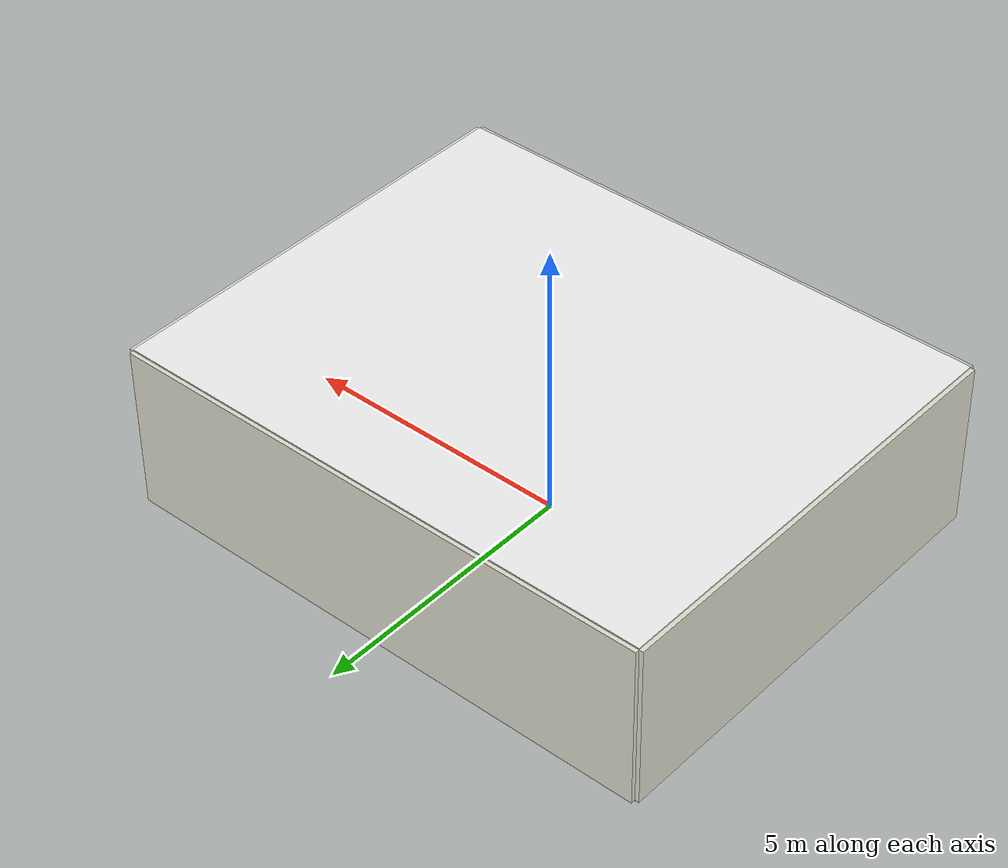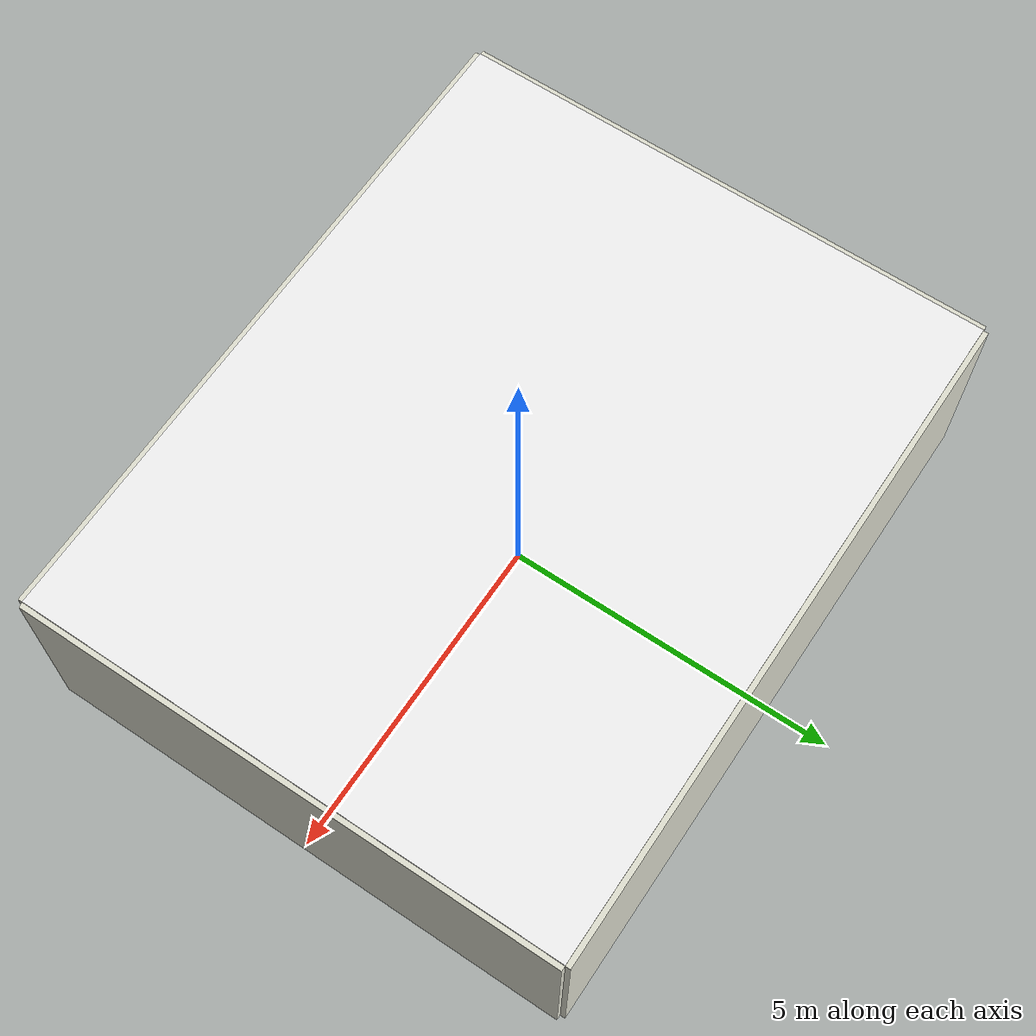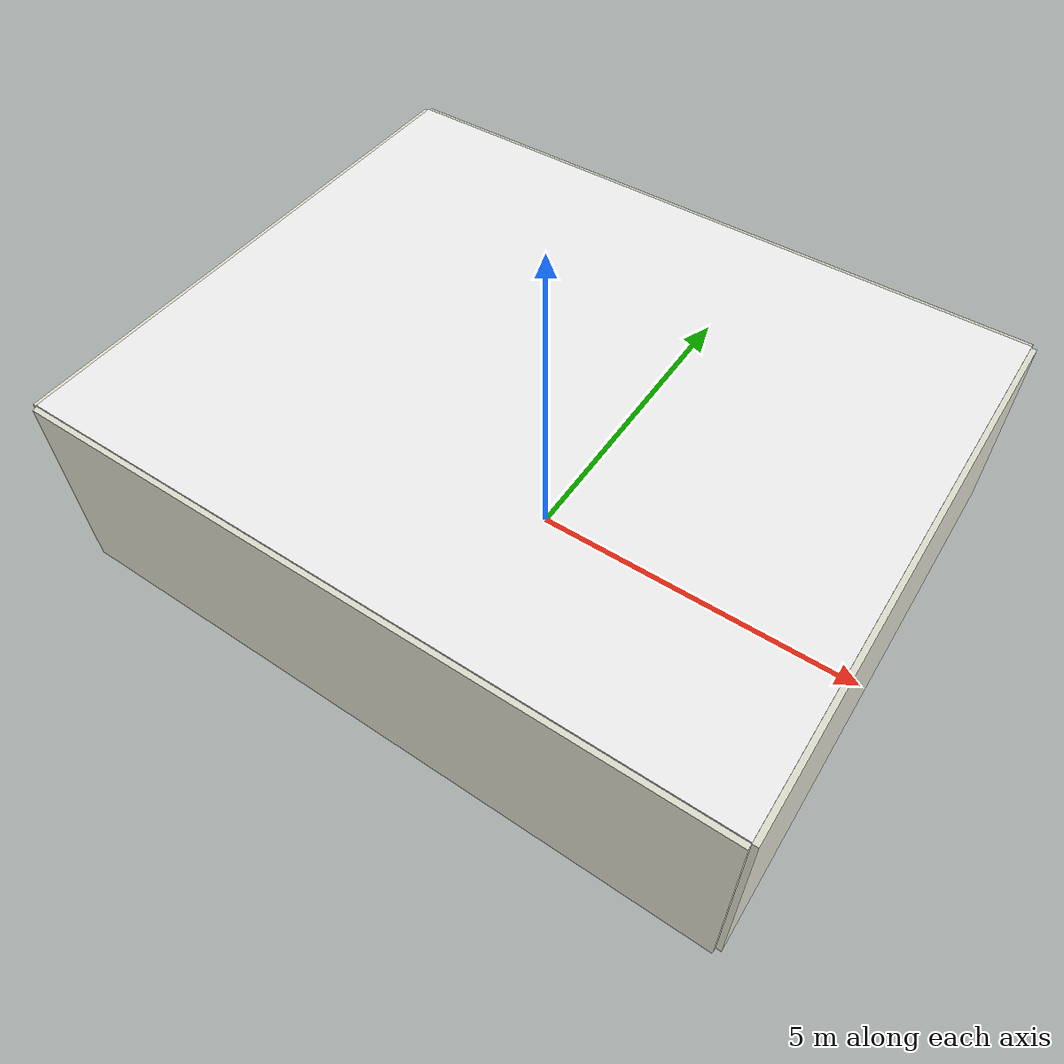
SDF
<sdf version="1.6">
 <world name="university_room">
  <physics type="ode">
   <real_time_update_rate>1000</real_time_update_rate>
   <max_step_size>0.001</max_step_size>
   <real_time_factor>1</real_time_factor>
  </physics>
  <light name="ambient_light" type="ambient"><color>0.4 0.4 0.4 1</color></light>
  <light name="sun" type="directional">
   <pose>0 0 10 0 0 0</pose>
   <diffuse>0.9 0.9 0.9 1</diffuse>
   <specular>0.3 0.3 0.3 1</specular>
   <direction>-0.3 0.3 -1</direction>
  </light>
  <light name="ceiling_light_1" type="point">
   <pose>-2 0 3 0 0 0</pose>
   <diffuse>1 1 0.95 1</diffuse>
   <specular>0.1 0.1 0.1 1</specular>
   <attenuation>
    <range>8</range>
    <constant>0.4</constant>
    <linear>0.1</linear>
    <quadratic>0.01</quadratic>
   </attenuation>
   <cast_shadows>false</cast_shadows>
  </light>
  <light name="ceiling_light_2" type="point">
   <pose>2 0 3 0 0 0</pose>
   <diffuse>1 1 0.95 1</diffuse>
   <specular>0.1 0.1 0.1 1</specular>
   <attenuation>
    <range>8</range>
    <constant>0.4</constant>
    <linear>0.1</linear>
    <quadratic>0.01</quadratic>
   </attenuation>
   <cast_shadows>false</cast_shadows>
  </light>
  <model name="floor">
   <static>true</static>
   <link name="link">
    <collision name="collision">
     <geometry><box><size>10 8 0.05</size></box></geometry>
     <surface><friction><ode><mu>1</mu><mu2>1</mu2></ode></friction></surface>
    </collision>
    <visual name="visual">
     <geometry><box><size>10 8 0.05</size></box></geometry>
     <material>
      <ambient>0.85 0.85 0.85 1</ambient>
      <diffuse>0.85 0.85 0.85 1</diffuse>
      <specular>0.1 0.1 0.1 1</specular>
     </material>
    </visual>
   </link>
  </model>
  <model name="ceiling">
   <static>true</static>
   <link name="link">
    <pose>0 0 3 0 0 0</pose>
    <collision name="collision"><geometry><box><size>10 8 0.05</size></box></geometry></collision>
    <visual name="visual">
     <geometry><box><size>10 8 0.05</size></box></geometry>
     <material><ambient>0.95 0.95 0.95 1</ambient><diffuse>0.95 0.95 0.95 1</diffuse></material>
    </visual>
   </link>
  </model>
  <model name="wall_north">
   <static>true</static>
   <link name="link">
    <pose>0 4 1.5 0 0 0</pose>
    <collision name="collision"><geometry><box><size>10 0.15 3</size></box></geometry></collision>
    <visual name="visual">
     <geometry><box><size>10 0.15 3</size></box></geometry>
     <material><ambient>0.88 0.88 0.82 1</ambient><diffuse>0.88 0.88 0.82 1</diffuse></material>
    </visual>
   </link>
  </model>
  <model name="wall_south">
   <static>true</static>
   <link name="link">
    <pose>0 -4 1.5 0 0 0</pose>
    <collision name="collision"><geometry><box><size>10 0.15 3</size></box></geometry></collision>
    <visual name="visual">
     <geometry><box><size>10 0.15 3</size></box></geometry>
     <material><ambient>0.88 0.88 0.82 1</ambient><diffuse>0.88 0.88 0.82 1</diffuse></material>
    </visual>
   </link>
  </model>
  <model name="wall_east">
   <static>true</static>
   <link name="link">
    <pose>5 0 1.5 0 0 0</pose>
    <collision name="collision"><geometry><box><size>0.15 8 3</size></box></geometry></collision>
    <visual name="visual">
     <geometry><box><size>0.15 8 3</size></box></geometry>
     <material><ambient>0.88 0.88 0.82 1</ambient><diffuse>0.88 0.88 0.82 1</diffuse></material>
    </visual>
   </link>
  </model>
  <model name="wall_west">
   <static>true</static>
   <link name="link">
    <pose>-5 0 1.5 0 0 0</pose>
    <collision name="collision"><geometry><box><size>0.15 8 3</size></box></geometry></collision>
    <visual name="visual">
     <geometry><box><size>0.15 8 3</size></box></geometry>
     <material><ambient>0.88 0.88 0.82 1</ambient><diffuse>0.88 0.88 0.82 1</diffuse></material>
    </visual>
   </link>
  </model>
  <model name="lecture_desk_top">
   <static>true</static>
   <link name="link">
    <pose>0 3 0.78 0 0 0</pose>
    <collision name="collision"><geometry><box><size>2.0 0.7 0.05</size></box></geometry></collision>
    <visual name="visual">
     <geometry><box><size>2.0 0.7 0.05</size></box></geometry>
     <material><ambient>0.45 0.28 0.10 1</ambient><diffuse>0.45 0.28 0.10 1</diffuse></material>
    </visual>
   </link>
  </model>
  <model name="desk_leg_left">
   <static>true</static>
   <link name="link">
    <pose>-0.9 3 0.39 0 0 0</pose>
    <collision name="collision"><geometry><box><size>0.05 0.05 0.78</size></box></geometry></collision>
    <visual name="visual">
     <geometry><box><size>0.05 0.05 0.78</size></box></geometry>
     <material><ambient>0.3 0.2 0.1 1</ambient><diffuse>0.3 0.2 0.1 1</diffuse></material>
    </visual>
   </link>
  </model>
  <model name="desk_leg_right">
   <static>true</static>
   <link name="link">
    <pose>0.9 3 0.39 0 0 0</pose>
    <collision name="collision"><geometry><box><size>0.05 0.05 0.78</size></box></geometry></collision>
    <visual name="visual">
     <geometry><box><size>0.05 0.05 0.78</size></box></geometry>
     <material><ambient>0.3 0.2 0.1 1</ambient><diffuse>0.3 0.2 0.1 1</diffuse></material>
    </visual>
   </link>
  </model>
  <model name="student_desk_1a_top">
   <static>true</static>
   <link name="link">
    <pose>-2.5 0.5 0.72 0 0 0</pose>
    <collision name="collision"><geometry><box><size>0.8 0.5 0.04</size></box></geometry></collision>
    <visual name="visual">
     <geometry><box><size>0.8 0.5 0.04</size></box></geometry>
     <material><ambient>0.55 0.35 0.12 1</ambient><diffuse>0.55 0.35 0.12 1</diffuse></material>
    </visual>
   </link>
  </model>
  <model name="student_desk_1b_top">
   <static>true</static>
   <link name="link">
    <pose>0 0.5 0.72 0 0 0</pose>
    <collision name="collision"><geometry><box><size>0.8 0.5 0.04</size></box></geometry></collision>
    <visual name="visual">
     <geometry><box><size>0.8 0.5 0.04</size></box></geometry>
     <material><ambient>0.55 0.35 0.12 1</ambient><diffuse>0.55 0.35 0.12 1</diffuse></material>
    </visual>
   </link>
  </model>
  <model name="student_desk_1c_top">
   <static>true</static>
   <link name="link">
    <pose>2.5 0.5 0.72 0 0 0</pose>
    <collision name="collision"><geometry><box><size>0.8 0.5 0.04</size></box></geometry></collision>
    <visual name="visual">
     <geometry><box><size>0.8 0.5 0.04</size></box></geometry>
     <material><ambient>0.55 0.35 0.12 1</ambient><diffuse>0.55 0.35 0.12 1</diffuse></material>
    </visual>
   </link>
  </model>
  <model name="student_desk_2a_top">
   <static>true</static>
   <link name="link">
    <pose>-2.5 -1.2 0.72 0 0 0</pose>
    <collision name="collision"><geometry><box><size>0.8 0.5 0.04</size></box></geometry></collision>
    <visual name="visual">
     <geometry><box><size>0.8 0.5 0.04</size></box></geometry>
     <material><ambient>0.55 0.35 0.12 1</ambient><diffuse>0.55 0.35 0.12 1</diffuse></material>
    </visual>
   </link>
  </model>
  <model name="student_desk_2b_top">
   <static>true</static>
   <link name="link">
    <pose>0 -1.2 0.72 0 0 0</pose>
    <collision name="collision"><geometry><box><size>0.8 0.5 0.04</size></box></geometry></collision>
    <visual name="visual">
     <geometry><box><size>0.8 0.5 0.04</size></box></geometry>
     <material><ambient>0.55 0.35 0.12 1</ambient><diffuse>0.55 0.35 0.12 1</diffuse></material>
    </visual>
   </link>
  </model>
  <model name="student_desk_2c_top">
   <static>true</static>
   <link name="link">
    <pose>2.5 -1.2 0.72 0 0 0</pose>
    <collision name="collision"><geometry><box><size>0.8 0.5 0.04</size></box></geometry></collision>
    <visual name="visual">
     <geometry><box><size>0.8 0.5 0.04</size></box></geometry>
     <material><ambient>0.55 0.35 0.12 1</ambient><diffuse>0.55 0.35 0.12 1</diffuse></material>
    </visual>
   </link>
  </model>
  <model name="whiteboard">
   <static>true</static>
   <link name="link">
    <pose>0 3.85 1.7 0 0 0</pose>
    <collision name="collision"><geometry><box><size>2.5 0.04 1.0</size></box></geometry></collision>
    <visual name="visual">
     <geometry><box><size>2.5 0.04 1.0</size></box></geometry>
     <material>
      <ambient>0.96 0.96 0.96 1</ambient>
      <diffuse>0.96 0.96 0.96 1</diffuse>
      <specular>0.4 0.4 0.4 1</specular>
     </material>
    </visual>
   </link>
  </model>
  <model name="whiteboard_frame">
   <static>true</static>
   <link name="link">
    <pose>0 3.83 1.7 0 0 0</pose>
    <collision name="collision"><geometry><box><size>2.6 0.03 1.1</size></box></geometry></collision>
    <visual name="visual">
     <geometry><box><size>2.6 0.03 1.1</size></box></geometry>
     <material><ambient>0.2 0.2 0.2 1</ambient><diffuse>0.2 0.2 0.2 1</diffuse></material>
    </visual>
   </link>
  </model>
  <model name="bookshelf_back">
   <static>true</static>
   <link name="link">
    <pose>-4.85 -2.5 1.0 0 0 0</pose>
    <collision name="collision"><geometry><box><size>0.04 1.2 2.0</size></box></geometry></collision>
    <visual name="visual">
     <geometry><box><size>0.04 1.2 2.0</size></box></geometry>
     <material><ambient>0.6 0.4 0.2 1</ambient><diffuse>0.6 0.4 0.2 1</diffuse></material>
    </visual>
   </link>
  </model>
  <model name="shelf_1">
   <static>true</static>
   <link name="link">
    <pose>-4.7 -2.5 0.35 0 0 0</pose>
    <collision name="collision"><geometry><box><size>0.3 1.2 0.03</size></box></geometry></collision>
    <visual name="visual">
     <geometry><box><size>0.3 1.2 0.03</size></box></geometry>
     <material><ambient>0.6 0.4 0.2 1</ambient><diffuse>0.6 0.4 0.2 1</diffuse></material>
    </visual>
   </link>
  </model>
  <model name="shelf_2">
   <static>true</static>
   <link name="link">
    <pose>-4.7 -2.5 1.0 0 0 0</pose>
    <collision name="collision"><geometry><box><size>0.3 1.2 0.03</size></box></geometry></collision>
    <visual name="visual">
     <geometry><box><size>0.3 1.2 0.03</size></box></geometry>
     <material><ambient>0.6 0.4 0.2 1</ambient><diffuse>0.6 0.4 0.2 1</diffuse></material>
    </visual>
   </link>
  </model>
  <model name="shelf_3">
   <static>true</static>
   <link name="link">
    <pose>-4.7 -2.5 1.65 0 0 0</pose>
    <collision name="collision"><geometry><box><size>0.3 1.2 0.03</size></box></geometry></collision>
    <visual name="visual">
     <geometry><box><size>0.3 1.2 0.03</size></box></geometry>
     <material><ambient>0.6 0.4 0.2 1</ambient><diffuse>0.6 0.4 0.2 1</diffuse></material>
    </visual>
   </link>
  </model>
  <model name="book_red">
   <static>true</static>
   <link name="link">
    <pose>-4.68 -2.7 0.41 0 0 0</pose>
    <collision name="collision"><geometry><box><size>0.05 0.15 0.22</size></box></geometry></collision>
    <visual name="visual">
     <geometry><box><size>0.05 0.15 0.22</size></box></geometry>
     <material><ambient>0.85 0.1 0.1 1</ambient><diffuse>0.85 0.1 0.1 1</diffuse></material>
    </visual>
   </link>
  </model>
  <model name="book_blue">
   <static>true</static>
   <link name="link">
    <pose>-4.68 -2.5 0.41 0 0 0</pose>
    <collision name="collision"><geometry><box><size>0.05 0.15 0.22</size></box></geometry></collision>
    <visual name="visual">
     <geometry><box><size>0.05 0.15 0.22</size></box></geometry>
     <material><ambient>0.1 0.2 0.85 1</ambient><diffuse>0.1 0.2 0.85 1</diffuse></material>
    </visual>
   </link>
  </model>
  <model name="book_green">
   <static>true</static>
   <link name="link">
    <pose>-4.68 -2.3 1.06 0 0 0</pose>
    <collision name="collision"><geometry><box><size>0.05 0.15 0.22</size></box></geometry></collision>
    <visual name="visual">
     <geometry><box><size>0.05 0.15 0.22</size></box></geometry>
     <material><ambient>0.1 0.75 0.2 1</ambient><diffuse>0.1 0.75 0.2 1</diffuse></material>
    </visual>
   </link>
  </model>
  <model name="book_orange">
   <static>true</static>
   <link name="link">
    <pose>-4.68 -2.55 1.06 0 0 0</pose>
    <collision name="collision"><geometry><box><size>0.05 0.15 0.22</size></box></geometry></collision>
    <visual name="visual">
     <geometry><box><size>0.05 0.15 0.22</size></box></geometry>
     <material><ambient>1.0 0.55 0.0 1</ambient><diffuse>1.0 0.55 0.0 1</diffuse></material>
    </visual>
   </link>
  </model>
  <model name="book_purple">
   <static>true</static>
   <link name="link">
    <pose>-4.68 -2.6 1.71 0 0 0</pose>
    <collision name="collision"><geometry><box><size>0.05 0.15 0.22</size></box></geometry></collision>
    <visual name="visual">
     <geometry><box><size>0.05 0.15 0.22</size></box></geometry>
     <material><ambient>0.55 0.1 0.8 1</ambient><diffuse>0.55 0.1 0.8 1</diffuse></material>
    </visual>
   </link>
  </model>
  <model name="book_cyan">
   <static>true</static>
   <link name="link">
    <pose>-4.68 -2.4 1.71 0 0 0</pose>
    <collision name="collision"><geometry><box><size>0.05 0.15 0.22</size></box></geometry></collision>
    <visual name="visual">
     <geometry><box><size>0.05 0.15 0.22</size></box></geometry>
     <material><ambient>0.0 0.8 0.8 1</ambient><diffuse>0.0 0.8 0.8 1</diffuse></material>
    </visual>
   </link>
  </model>
  <model name="pencil_cup">
   <static>true</static>
   <link name="link">
    <pose>0.7 3.1 0.92 0 0 0</pose>
    <collision name="collision">
     <geometry><cylinder><radius>0.04</radius><length>0.12</length></cylinder></geometry>
    </collision>
    <visual name="visual">
     <geometry><cylinder><radius>0.04</radius><length>0.12</length></cylinder></geometry>
     <material><ambient>1.0 0.85 0.0 1</ambient><diffuse>1.0 0.85 0.0 1</diffuse></material>
    </visual>
   </link>
  </model>
  <model name="marker_pen">
   <static>true</static>
   <link name="link">
    <pose>0.3 3.15 0.82 0 0 1.5708</pose>
    <collision name="collision">
     <geometry><cylinder><radius>0.015</radius><length>0.14</length></cylinder></geometry>
    </collision>
    <visual name="visual">
     <geometry><cylinder><radius>0.015</radius><length>0.14</length></cylinder></geometry>
     <material><ambient>0.9 0.1 0.1 1</ambient><diffuse>0.9 0.1 0.1 1</diffuse></material>
    </visual>
   </link>
  </model>
  <model name="water_bottle">
   <static>true</static>
   <link name="link">
    <pose>0.25 0.55 0.97 0 0 0</pose>
    <collision name="collision">
     <geometry><cylinder><radius>0.04</radius><length>0.22</length></cylinder></geometry>
    </collision>
    <visual name="visual">
     <geometry><cylinder><radius>0.04</radius><length>0.22</length></cylinder></geometry>
     <material>
      <ambient>0.1 0.45 0.9 1</ambient>
      <diffuse>0.1 0.45 0.9 1</diffuse>
      <specular>0.4 0.6 1.0 1</specular>
     </material>
    </visual>
   </link>
  </model>
  <model name="plant_pot">
   <static>true</static>
   <link name="link">
    <pose>4.5 3.5 0.2 0 0 0</pose>
    <collision name="collision">
     <geometry><cylinder><radius>0.14</radius><length>0.4</length></cylinder></geometry>
    </collision>
    <visual name="visual">
     <geometry><cylinder><radius>0.14</radius><length>0.4</length></cylinder></geometry>
     <material><ambient>0.6 0.3 0.1 1</ambient><diffuse>0.6 0.3 0.1 1</diffuse></material>
    </visual>
   </link>
  </model>
  <model name="plant_foliage">
   <static>true</static>
   <link name="link">
    <pose>4.5 3.5 0.65 0 0 0</pose>
    <collision name="collision"><geometry><sphere><radius>0.18</radius></sphere></geometry></collision>
    <visual name="visual">
     <geometry><sphere><radius>0.18</radius></sphere></geometry>
     <material><ambient>0.1 0.6 0.15 1</ambient><diffuse>0.1 0.6 0.15 1</diffuse></material>
    </visual>
   </link>
  </model>
  <model name="notice_board">
   <static>true</static>
   <link name="link">
    <pose>4.88 1.5 1.6 0 0 0</pose>
    <collision name="collision"><geometry><box><size>0.04 1.2 0.9</size></box></geometry></collision>
    <visual name="visual">
     <geometry><box><size>0.04 1.2 0.9</size></box></geometry>
     <material><ambient>0.9 0.45 0.0 1</ambient><diffuse>0.9 0.45 0.0 1</diffuse></material>
    </visual>
   </link>
  </model>
  <model name="waste_bin">
   <static>true</static>
   <link name="link">
    <pose>4.2 -3.5 0.2 0 0 0</pose>
    <collision name="collision">
     <geometry><cylinder><radius>0.18</radius><length>0.4</length></cylinder></geometry>
    </collision>
    <visual name="visual">
     <geometry><cylinder><radius>0.18</radius><length>0.4</length></cylinder></geometry>
     <material><ambient>0.05 0.25 0.75 1</ambient><diffuse>0.05 0.25 0.75 1</diffuse></material>
    </visual>
   </link>
  </model>
  <model name="laptop_body">
   <static>true</static>
   <link name="link">
    <pose>0 -1.2 0.775 0 0 0</pose>
    <collision name="collision"><geometry><box><size>0.33 0.22 0.02</size></box></geometry></collision>
    <visual name="visual">
     <geometry><box><size>0.33 0.22 0.02</size></box></geometry>
     <material>
      <ambient>0.2 0.2 0.22 1</ambient>
      <diffuse>0.2 0.2 0.22 1</diffuse>
      <specular>0.5 0.5 0.5 1</specular>
     </material>
    </visual>
   </link>
  </model>
  <model name="laptop_screen">
   <static>true</static>
   <link name="link">
    <pose>0 -1.09 0.92 0.75 0 0</pose>
    <collision name="collision"><geometry><box><size>0.33 0.02 0.22</size></box></geometry></collision>
    <visual name="visual">
     <geometry><box><size>0.33 0.02 0.22</size></box></geometry>
     <material>
      <ambient>0.15 0.15 0.17 1</ambient>
      <diffuse>0.15 0.15 0.17 1</diffuse>
      <specular>0.6 0.6 0.6 1</specular>
     </material>
    </visual>
   </link>
  </model>
  <model name="projector_screen">
   <static>true</static>
   <link name="link">
    <pose>0 -3.88 1.9 0 0 0</pose>
    <collision name="collision"><geometry><box><size>2.0 0.04 1.2</size></box></geometry></collision>
    <visual name="visual">
     <geometry><box><size>2.0 0.04 1.2</size></box></geometry>
     <material><ambient>0.95 0.95 0.9 1</ambient><diffuse>0.95 0.95 0.9 1</diffuse></material>
    </visual>
   </link>
  </model>
  <model name="projector_screen_border">
   <static>true</static>
   <link name="link">
    <pose>0 -3.86 1.9 0 0 0</pose>
    <collision name="collision"><geometry><box><size>2.1 0.03 1.3</size></box></geometry></collision>
    <visual name="visual">
     <geometry><box><size>2.1 0.03 1.3</size></box></geometry>
     <material><ambient>0.1 0.1 0.1 1</ambient><diffuse>0.1 0.1 0.1 1</diffuse></material>
    </visual>
   </link>
  </model>
 </world>
</sdf>
